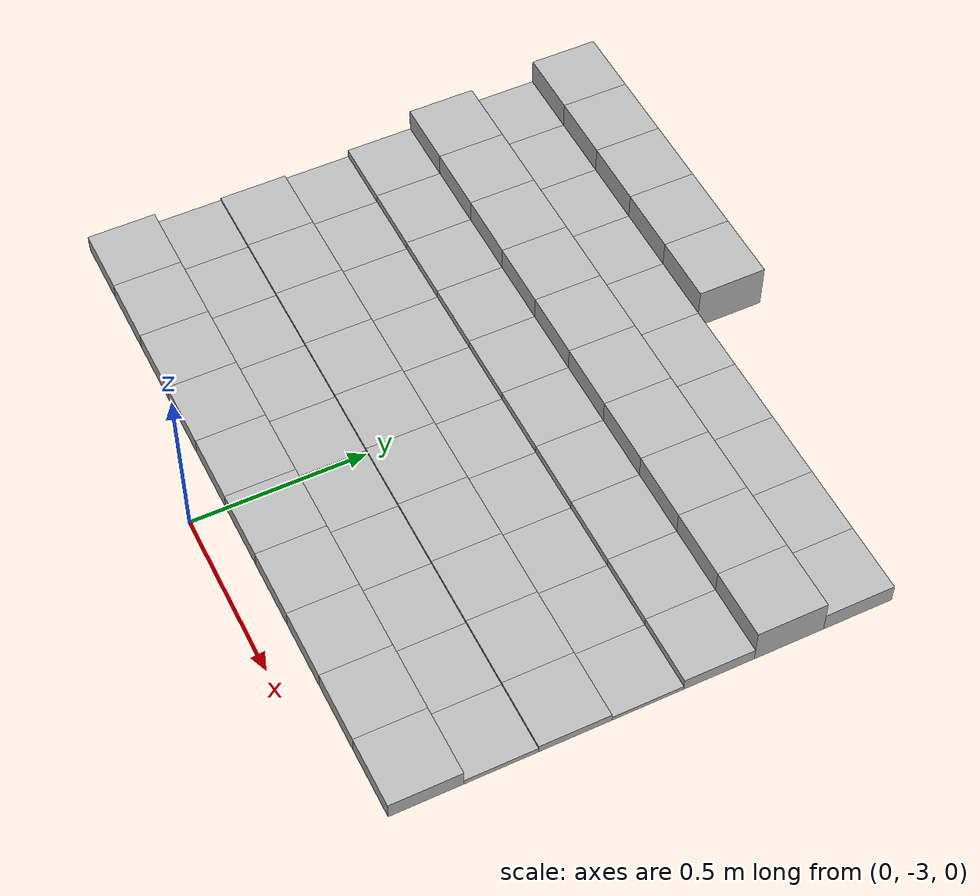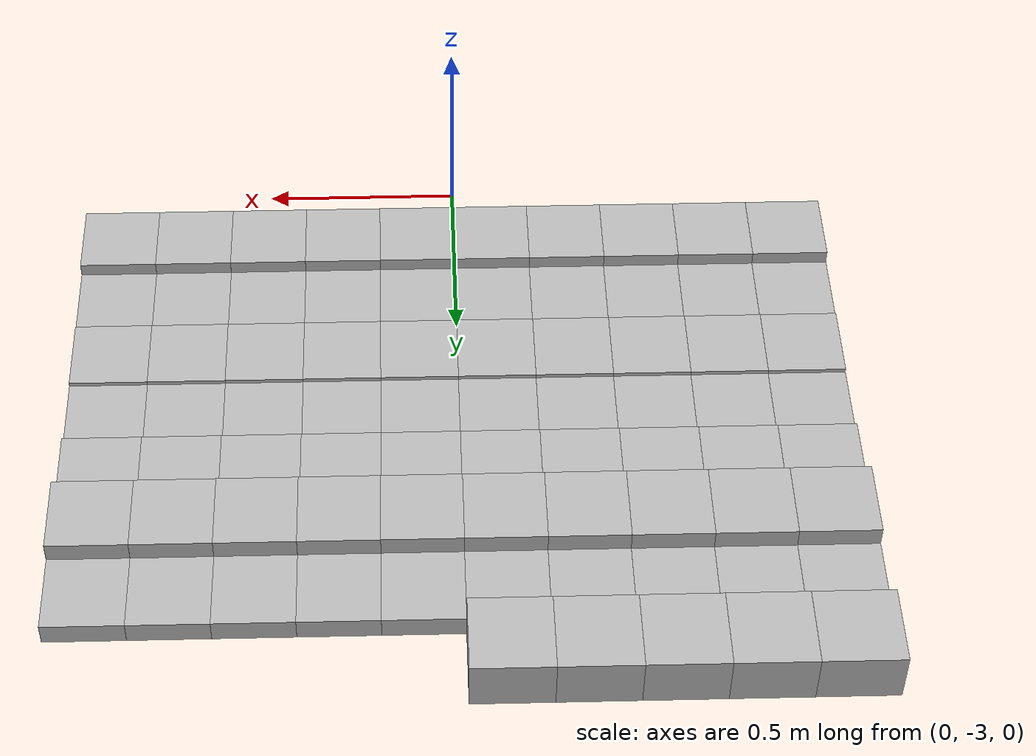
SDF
<sdf version="1.6">
 <model name="Terrain">
  <static>true</static>
  <link name="box_7_0">
   <pose>-0.9 -1.4 0.0691178265774 0 0 0</pose>
   <inertial>
    <mass>1.0</mass>
    <inertia><ixx>0.0</ixx><ixy>0.0</ixy><ixz>0.0</ixz><iyy>0.0</iyy><iyz>0.0</iyz><izz>0.0</izz></inertia>
   </inertial>
   <collision name="collision"><geometry><box><size>0.2 0.2 0.138235653155</size></box></geometry></collision>
   <visual name="visual"><geometry><box><size>0.2 0.2 0.138235653155</size></box></geometry></visual>
  </link>
  <link name="box_7_1">
   <pose>-0.7 -1.4 0.0691178265774 0 0 0</pose>
   <inertial>
    <mass>1.0</mass>
    <inertia><ixx>0.0</ixx><ixy>0.0</ixy><ixz>0.0</ixz><iyy>0.0</iyy><iyz>0.0</iyz><izz>0.0</izz></inertia>
   </inertial>
   <collision name="collision"><geometry><box><size>0.2 0.2 0.138235653155</size></box></geometry></collision>
   <visual name="visual"><geometry><box><size>0.2 0.2 0.138235653155</size></box></geometry></visual>
  </link>
  <link name="box_7_2">
   <pose>-0.5 -1.4 0.0691178265774 0 0 0</pose>
   <inertial>
    <mass>1.0</mass>
    <inertia><ixx>0.0</ixx><ixy>0.0</ixy><ixz>0.0</ixz><iyy>0.0</iyy><iyz>0.0</iyz><izz>0.0</izz></inertia>
   </inertial>
   <collision name="collision"><geometry><box><size>0.2 0.2 0.138235653155</size></box></geometry></collision>
   <visual name="visual"><geometry><box><size>0.2 0.2 0.138235653155</size></box></geometry></visual>
  </link>
  <link name="box_7_3">
   <pose>-0.3 -1.4 0.0691178265774 0 0 0</pose>
   <inertial>
    <mass>1.0</mass>
    <inertia><ixx>0.0</ixx><ixy>0.0</ixy><ixz>0.0</ixz><iyy>0.0</iyy><iyz>0.0</iyz><izz>0.0</izz></inertia>
   </inertial>
   <collision name="collision"><geometry><box><size>0.2 0.2 0.138235653155</size></box></geometry></collision>
   <visual name="visual"><geometry><box><size>0.2 0.2 0.138235653155</size></box></geometry></visual>
  </link>
  <link name="box_7_4">
   <pose>-0.1 -1.4 0.0691178265774 0 0 0</pose>
   <inertial>
    <mass>1.0</mass>
    <inertia><ixx>0.0</ixx><ixy>0.0</ixy><ixz>0.0</ixz><iyy>0.0</iyy><iyz>0.0</iyz><izz>0.0</izz></inertia>
   </inertial>
   <collision name="collision"><geometry><box><size>0.2 0.2 0.138235653155</size></box></geometry></collision>
   <visual name="visual"><geometry><box><size>0.2 0.2 0.138235653155</size></box></geometry></visual>
  </link>
  <link name="box_8_0">
   <pose>-0.9 -1.6 0.0291482180971 0 0 0</pose>
   <inertial>
    <mass>1.0</mass>
    <inertia><ixx>0.0</ixx><ixy>0.0</ixy><ixz>0.0</ixz><iyy>0.0</iyy><iyz>0.0</iyz><izz>0.0</izz></inertia>
   </inertial>
   <collision name="collision"><geometry><box><size>0.2 0.2 0.0582964361942</size></box></geometry></collision>
   <visual name="visual"><geometry><box><size>0.2 0.2 0.0582964361942</size></box></geometry></visual>
  </link>
  <link name="box_8_1">
   <pose>-0.7 -1.6 0.0291482180971 0 0 0</pose>
   <inertial>
    <mass>1.0</mass>
    <inertia><ixx>0.0</ixx><ixy>0.0</ixy><ixz>0.0</ixz><iyy>0.0</iyy><iyz>0.0</iyz><izz>0.0</izz></inertia>
   </inertial>
   <collision name="collision"><geometry><box><size>0.2 0.2 0.0582964361942</size></box></geometry></collision>
   <visual name="visual"><geometry><box><size>0.2 0.2 0.0582964361942</size></box></geometry></visual>
  </link>
  <link name="box_8_2">
   <pose>-0.5 -1.6 0.0291482180971 0 0 0</pose>
   <inertial>
    <mass>1.0</mass>
    <inertia><ixx>0.0</ixx><ixy>0.0</ixy><ixz>0.0</ixz><iyy>0.0</iyy><iyz>0.0</iyz><izz>0.0</izz></inertia>
   </inertial>
   <collision name="collision"><geometry><box><size>0.2 0.2 0.0582964361942</size></box></geometry></collision>
   <visual name="visual"><geometry><box><size>0.2 0.2 0.0582964361942</size></box></geometry></visual>
  </link>
  <link name="box_8_3">
   <pose>-0.3 -1.6 0.0291482180971 0 0 0</pose>
   <inertial>
    <mass>1.0</mass>
    <inertia><ixx>0.0</ixx><ixy>0.0</ixy><ixz>0.0</ixz><iyy>0.0</iyy><iyz>0.0</iyz><izz>0.0</izz></inertia>
   </inertial>
   <collision name="collision"><geometry><box><size>0.2 0.2 0.0582964361942</size></box></geometry></collision>
   <visual name="visual"><geometry><box><size>0.2 0.2 0.0582964361942</size></box></geometry></visual>
  </link>
  <link name="box_8_4">
   <pose>-0.1 -1.6 0.0291482180971 0 0 0</pose>
   <inertial>
    <mass>1.0</mass>
    <inertia><ixx>0.0</ixx><ixy>0.0</ixy><ixz>0.0</ixz><iyy>0.0</iyy><iyz>0.0</iyz><izz>0.0</izz></inertia>
   </inertial>
   <collision name="collision"><geometry><box><size>0.2 0.2 0.0582964361942</size></box></geometry></collision>
   <visual name="visual"><geometry><box><size>0.2 0.2 0.0582964361942</size></box></geometry></visual>
  </link>
  <link name="box_8_5">
   <pose>0.1 -1.6 0.0291482180971 0 0 0</pose>
   <inertial>
    <mass>1.0</mass>
    <inertia><ixx>0.0</ixx><ixy>0.0</ixy><ixz>0.0</ixz><iyy>0.0</iyy><iyz>0.0</iyz><izz>0.0</izz></inertia>
   </inertial>
   <collision name="collision"><geometry><box><size>0.2 0.2 0.0582964361942</size></box></geometry></collision>
   <visual name="visual"><geometry><box><size>0.2 0.2 0.0582964361942</size></box></geometry></visual>
  </link>
  <link name="box_8_6">
   <pose>0.3 -1.6 0.0291482180971 0 0 0</pose>
   <inertial>
    <mass>1.0</mass>
    <inertia><ixx>0.0</ixx><ixy>0.0</ixy><ixz>0.0</ixz><iyy>0.0</iyy><iyz>0.0</iyz><izz>0.0</izz></inertia>
   </inertial>
   <collision name="collision"><geometry><box><size>0.2 0.2 0.0582964361942</size></box></geometry></collision>
   <visual name="visual"><geometry><box><size>0.2 0.2 0.0582964361942</size></box></geometry></visual>
  </link>
  <link name="box_8_7">
   <pose>0.5 -1.6 0.0291482180971 0 0 0</pose>
   <inertial>
    <mass>1.0</mass>
    <inertia><ixx>0.0</ixx><ixy>0.0</ixy><ixz>0.0</ixz><iyy>0.0</iyy><iyz>0.0</iyz><izz>0.0</izz></inertia>
   </inertial>
   <collision name="collision"><geometry><box><size>0.2 0.2 0.0582964361942</size></box></geometry></collision>
   <visual name="visual"><geometry><box><size>0.2 0.2 0.0582964361942</size></box></geometry></visual>
  </link>
  <link name="box_8_8">
   <pose>0.7 -1.6 0.0291482180971 0 0 0</pose>
   <inertial>
    <mass>1.0</mass>
    <inertia><ixx>0.0</ixx><ixy>0.0</ixy><ixz>0.0</ixz><iyy>0.0</iyy><iyz>0.0</iyz><izz>0.0</izz></inertia>
   </inertial>
   <collision name="collision"><geometry><box><size>0.2 0.2 0.0582964361942</size></box></geometry></collision>
   <visual name="visual"><geometry><box><size>0.2 0.2 0.0582964361942</size></box></geometry></visual>
  </link>
  <link name="box_8_9">
   <pose>0.9 -1.6 0.0291482180971 0 0 0</pose>
   <inertial>
    <mass>1.0</mass>
    <inertia><ixx>0.0</ixx><ixy>0.0</ixy><ixz>0.0</ixz><iyy>0.0</iyy><iyz>0.0</iyz><izz>0.0</izz></inertia>
   </inertial>
   <collision name="collision"><geometry><box><size>0.2 0.2 0.0582964361942</size></box></geometry></collision>
   <visual name="visual"><geometry><box><size>0.2 0.2 0.0582964361942</size></box></geometry></visual>
  </link>
  <link name="box_9_0">
   <pose>-0.9 -1.8 0.0546674233878 0 0 0</pose>
   <inertial>
    <mass>1.0</mass>
    <inertia><ixx>0.0</ixx><ixy>0.0</ixy><ixz>0.0</ixz><iyy>0.0</iyy><iyz>0.0</iyz><izz>0.0</izz></inertia>
   </inertial>
   <collision name="collision"><geometry><box><size>0.2 0.2 0.109334846776</size></box></geometry></collision>
   <visual name="visual"><geometry><box><size>0.2 0.2 0.109334846776</size></box></geometry></visual>
  </link>
  <link name="box_9_1">
   <pose>-0.7 -1.8 0.0546674233878 0 0 0</pose>
   <inertial>
    <mass>1.0</mass>
    <inertia><ixx>0.0</ixx><ixy>0.0</ixy><ixz>0.0</ixz><iyy>0.0</iyy><iyz>0.0</iyz><izz>0.0</izz></inertia>
   </inertial>
   <collision name="collision"><geometry><box><size>0.2 0.2 0.109334846776</size></box></geometry></collision>
   <visual name="visual"><geometry><box><size>0.2 0.2 0.109334846776</size></box></geometry></visual>
  </link>
  <link name="box_9_2">
   <pose>-0.5 -1.8 0.0546674233878 0 0 0</pose>
   <inertial>
    <mass>1.0</mass>
    <inertia><ixx>0.0</ixx><ixy>0.0</ixy><ixz>0.0</ixz><iyy>0.0</iyy><iyz>0.0</iyz><izz>0.0</izz></inertia>
   </inertial>
   <collision name="collision"><geometry><box><size>0.2 0.2 0.109334846776</size></box></geometry></collision>
   <visual name="visual"><geometry><box><size>0.2 0.2 0.109334846776</size></box></geometry></visual>
  </link>
  <link name="box_9_3">
   <pose>-0.3 -1.8 0.0546674233878 0 0 0</pose>
   <inertial>
    <mass>1.0</mass>
    <inertia><ixx>0.0</ixx><ixy>0.0</ixy><ixz>0.0</ixz><iyy>0.0</iyy><iyz>0.0</iyz><izz>0.0</izz></inertia>
   </inertial>
   <collision name="collision"><geometry><box><size>0.2 0.2 0.109334846776</size></box></geometry></collision>
   <visual name="visual"><geometry><box><size>0.2 0.2 0.109334846776</size></box></geometry></visual>
  </link>
  <link name="box_9_4">
   <pose>-0.1 -1.8 0.0546674233878 0 0 0</pose>
   <inertial>
    <mass>1.0</mass>
    <inertia><ixx>0.0</ixx><ixy>0.0</ixy><ixz>0.0</ixz><iyy>0.0</iyy><iyz>0.0</iyz><izz>0.0</izz></inertia>
   </inertial>
   <collision name="collision"><geometry><box><size>0.2 0.2 0.109334846776</size></box></geometry></collision>
   <visual name="visual"><geometry><box><size>0.2 0.2 0.109334846776</size></box></geometry></visual>
  </link>
  <link name="box_9_5">
   <pose>0.1 -1.8 0.0546674233878 0 0 0</pose>
   <inertial>
    <mass>1.0</mass>
    <inertia><ixx>0.0</ixx><ixy>0.0</ixy><ixz>0.0</ixz><iyy>0.0</iyy><iyz>0.0</iyz><izz>0.0</izz></inertia>
   </inertial>
   <collision name="collision"><geometry><box><size>0.2 0.2 0.109334846776</size></box></geometry></collision>
   <visual name="visual"><geometry><box><size>0.2 0.2 0.109334846776</size></box></geometry></visual>
  </link>
  <link name="box_9_6">
   <pose>0.3 -1.8 0.0546674233878 0 0 0</pose>
   <inertial>
    <mass>1.0</mass>
    <inertia><ixx>0.0</ixx><ixy>0.0</ixy><ixz>0.0</ixz><iyy>0.0</iyy><iyz>0.0</iyz><izz>0.0</izz></inertia>
   </inertial>
   <collision name="collision"><geometry><box><size>0.2 0.2 0.109334846776</size></box></geometry></collision>
   <visual name="visual"><geometry><box><size>0.2 0.2 0.109334846776</size></box></geometry></visual>
  </link>
  <link name="box_9_7">
   <pose>0.5 -1.8 0.0546674233878 0 0 0</pose>
   <inertial>
    <mass>1.0</mass>
    <inertia><ixx>0.0</ixx><ixy>0.0</ixy><ixz>0.0</ixz><iyy>0.0</iyy><iyz>0.0</iyz><izz>0.0</izz></inertia>
   </inertial>
   <collision name="collision"><geometry><box><size>0.2 0.2 0.109334846776</size></box></geometry></collision>
   <visual name="visual"><geometry><box><size>0.2 0.2 0.109334846776</size></box></geometry></visual>
  </link>
  <link name="box_9_8">
   <pose>0.7 -1.8 0.0546674233878 0 0 0</pose>
   <inertial>
    <mass>1.0</mass>
    <inertia><ixx>0.0</ixx><ixy>0.0</ixy><ixz>0.0</ixz><iyy>0.0</iyy><iyz>0.0</iyz><izz>0.0</izz></inertia>
   </inertial>
   <collision name="collision"><geometry><box><size>0.2 0.2 0.109334846776</size></box></geometry></collision>
   <visual name="visual"><geometry><box><size>0.2 0.2 0.109334846776</size></box></geometry></visual>
  </link>
  <link name="box_9_9">
   <pose>0.9 -1.8 0.0546674233878 0 0 0</pose>
   <inertial>
    <mass>1.0</mass>
    <inertia><ixx>0.0</ixx><ixy>0.0</ixy><ixz>0.0</ixz><iyy>0.0</iyy><iyz>0.0</iyz><izz>0.0</izz></inertia>
   </inertial>
   <collision name="collision"><geometry><box><size>0.2 0.2 0.109334846776</size></box></geometry></collision>
   <visual name="visual"><geometry><box><size>0.2 0.2 0.109334846776</size></box></geometry></visual>
  </link>
  <link name="box_10_0">
   <pose>-0.9 -2.0 0.0193838969897 0 0 0</pose>
   <inertial>
    <mass>1.0</mass>
    <inertia><ixx>0.0</ixx><ixy>0.0</ixy><ixz>0.0</ixz><iyy>0.0</iyy><iyz>0.0</iyz><izz>0.0</izz></inertia>
   </inertial>
   <collision name="collision"><geometry><box><size>0.2 0.2 0.0387677939794</size></box></geometry></collision>
   <visual name="visual"><geometry><box><size>0.2 0.2 0.0387677939794</size></box></geometry></visual>
  </link>
  <link name="box_10_1">
   <pose>-0.7 -2.0 0.0193838969897 0 0 0</pose>
   <inertial>
    <mass>1.0</mass>
    <inertia><ixx>0.0</ixx><ixy>0.0</ixy><ixz>0.0</ixz><iyy>0.0</iyy><iyz>0.0</iyz><izz>0.0</izz></inertia>
   </inertial>
   <collision name="collision"><geometry><box><size>0.2 0.2 0.0387677939794</size></box></geometry></collision>
   <visual name="visual"><geometry><box><size>0.2 0.2 0.0387677939794</size></box></geometry></visual>
  </link>
  <link name="box_10_2">
   <pose>-0.5 -2.0 0.0193838969897 0 0 0</pose>
   <inertial>
    <mass>1.0</mass>
    <inertia><ixx>0.0</ixx><ixy>0.0</ixy><ixz>0.0</ixz><iyy>0.0</iyy><iyz>0.0</iyz><izz>0.0</izz></inertia>
   </inertial>
   <collision name="collision"><geometry><box><size>0.2 0.2 0.0387677939794</size></box></geometry></collision>
   <visual name="visual"><geometry><box><size>0.2 0.2 0.0387677939794</size></box></geometry></visual>
  </link>
  <link name="box_10_3">
   <pose>-0.3 -2.0 0.0193838969897 0 0 0</pose>
   <inertial>
    <mass>1.0</mass>
    <inertia><ixx>0.0</ixx><ixy>0.0</ixy><ixz>0.0</ixz><iyy>0.0</iyy><iyz>0.0</iyz><izz>0.0</izz></inertia>
   </inertial>
   <collision name="collision"><geometry><box><size>0.2 0.2 0.0387677939794</size></box></geometry></collision>
   <visual name="visual"><geometry><box><size>0.2 0.2 0.0387677939794</size></box></geometry></visual>
  </link>
  <link name="box_10_4">
   <pose>-0.1 -2.0 0.0193838969897 0 0 0</pose>
   <inertial>
    <mass>1.0</mass>
    <inertia><ixx>0.0</ixx><ixy>0.0</ixy><ixz>0.0</ixz><iyy>0.0</iyy><iyz>0.0</iyz><izz>0.0</izz></inertia>
   </inertial>
   <collision name="collision"><geometry><box><size>0.2 0.2 0.0387677939794</size></box></geometry></collision>
   <visual name="visual"><geometry><box><size>0.2 0.2 0.0387677939794</size></box></geometry></visual>
  </link>
  <link name="box_10_5">
   <pose>0.1 -2.0 0.0193838969897 0 0 0</pose>
   <inertial>
    <mass>1.0</mass>
    <inertia><ixx>0.0</ixx><ixy>0.0</ixy><ixz>0.0</ixz><iyy>0.0</iyy><iyz>0.0</iyz><izz>0.0</izz></inertia>
   </inertial>
   <collision name="collision"><geometry><box><size>0.2 0.2 0.0387677939794</size></box></geometry></collision>
   <visual name="visual"><geometry><box><size>0.2 0.2 0.0387677939794</size></box></geometry></visual>
  </link>
  <link name="box_10_6">
   <pose>0.3 -2.0 0.0193838969897 0 0 0</pose>
   <inertial>
    <mass>1.0</mass>
    <inertia><ixx>0.0</ixx><ixy>0.0</ixy><ixz>0.0</ixz><iyy>0.0</iyy><iyz>0.0</iyz><izz>0.0</izz></inertia>
   </inertial>
   <collision name="collision"><geometry><box><size>0.2 0.2 0.0387677939794</size></box></geometry></collision>
   <visual name="visual"><geometry><box><size>0.2 0.2 0.0387677939794</size></box></geometry></visual>
  </link>
  <link name="box_10_7">
   <pose>0.5 -2.0 0.0193838969897 0 0 0</pose>
   <inertial>
    <mass>1.0</mass>
    <inertia><ixx>0.0</ixx><ixy>0.0</ixy><ixz>0.0</ixz><iyy>0.0</iyy><iyz>0.0</iyz><izz>0.0</izz></inertia>
   </inertial>
   <collision name="collision"><geometry><box><size>0.2 0.2 0.0387677939794</size></box></geometry></collision>
   <visual name="visual"><geometry><box><size>0.2 0.2 0.0387677939794</size></box></geometry></visual>
  </link>
  <link name="box_10_8">
   <pose>0.7 -2.0 0.0193838969897 0 0 0</pose>
   <inertial>
    <mass>1.0</mass>
    <inertia><ixx>0.0</ixx><ixy>0.0</ixy><ixz>0.0</ixz><iyy>0.0</iyy><iyz>0.0</iyz><izz>0.0</izz></inertia>
   </inertial>
   <collision name="collision"><geometry><box><size>0.2 0.2 0.0387677939794</size></box></geometry></collision>
   <visual name="visual"><geometry><box><size>0.2 0.2 0.0387677939794</size></box></geometry></visual>
  </link>
  <link name="box_10_9">
   <pose>0.9 -2.0 0.0193838969897 0 0 0</pose>
   <inertial>
    <mass>1.0</mass>
    <inertia><ixx>0.0</ixx><ixy>0.0</ixy><ixz>0.0</ixz><iyy>0.0</iyy><iyz>0.0</iyz><izz>0.0</izz></inertia>
   </inertial>
   <collision name="collision"><geometry><box><size>0.2 0.2 0.0387677939794</size></box></geometry></collision>
   <visual name="visual"><geometry><box><size>0.2 0.2 0.0387677939794</size></box></geometry></visual>
  </link>
  <link name="box_11_0">
   <pose>-0.9 -2.2 0.00664214490887 0 0 0</pose>
   <inertial>
    <mass>1.0</mass>
    <inertia><ixx>0.0</ixx><ixy>0.0</ixy><ixz>0.0</ixz><iyy>0.0</iyy><iyz>0.0</iyz><izz>0.0</izz></inertia>
   </inertial>
   <collision name="collision"><geometry><box><size>0.2 0.2 0.0132842898177</size></box></geometry></collision>
   <visual name="visual"><geometry><box><size>0.2 0.2 0.0132842898177</size></box></geometry></visual>
  </link>
  <link name="box_11_1">
   <pose>-0.7 -2.2 0.00664214490887 0 0 0</pose>
   <inertial>
    <mass>1.0</mass>
    <inertia><ixx>0.0</ixx><ixy>0.0</ixy><ixz>0.0</ixz><iyy>0.0</iyy><iyz>0.0</iyz><izz>0.0</izz></inertia>
   </inertial>
   <collision name="collision"><geometry><box><size>0.2 0.2 0.0132842898177</size></box></geometry></collision>
   <visual name="visual"><geometry><box><size>0.2 0.2 0.0132842898177</size></box></geometry></visual>
  </link>
  <link name="box_11_2">
   <pose>-0.5 -2.2 0.00664214490887 0 0 0</pose>
   <inertial>
    <mass>1.0</mass>
    <inertia><ixx>0.0</ixx><ixy>0.0</ixy><ixz>0.0</ixz><iyy>0.0</iyy><iyz>0.0</iyz><izz>0.0</izz></inertia>
   </inertial>
   <collision name="collision"><geometry><box><size>0.2 0.2 0.0132842898177</size></box></geometry></collision>
   <visual name="visual"><geometry><box><size>0.2 0.2 0.0132842898177</size></box></geometry></visual>
  </link>
  <link name="box_11_3">
   <pose>-0.3 -2.2 0.00664214490887 0 0 0</pose>
   <inertial>
    <mass>1.0</mass>
    <inertia><ixx>0.0</ixx><ixy>0.0</ixy><ixz>0.0</ixz><iyy>0.0</iyy><iyz>0.0</iyz><izz>0.0</izz></inertia>
   </inertial>
   <collision name="collision"><geometry><box><size>0.2 0.2 0.0132842898177</size></box></geometry></collision>
   <visual name="visual"><geometry><box><size>0.2 0.2 0.0132842898177</size></box></geometry></visual>
  </link>
  <link name="box_11_4">
   <pose>-0.1 -2.2 0.00664214490887 0 0 0</pose>
   <inertial>
    <mass>1.0</mass>
    <inertia><ixx>0.0</ixx><ixy>0.0</ixy><ixz>0.0</ixz><iyy>0.0</iyy><iyz>0.0</iyz><izz>0.0</izz></inertia>
   </inertial>
   <collision name="collision"><geometry><box><size>0.2 0.2 0.0132842898177</size></box></geometry></collision>
   <visual name="visual"><geometry><box><size>0.2 0.2 0.0132842898177</size></box></geometry></visual>
  </link>
  <link name="box_11_5">
   <pose>0.1 -2.2 0.00664214490887 0 0 0</pose>
   <inertial>
    <mass>1.0</mass>
    <inertia><ixx>0.0</ixx><ixy>0.0</ixy><ixz>0.0</ixz><iyy>0.0</iyy><iyz>0.0</iyz><izz>0.0</izz></inertia>
   </inertial>
   <collision name="collision"><geometry><box><size>0.2 0.2 0.0132842898177</size></box></geometry></collision>
   <visual name="visual"><geometry><box><size>0.2 0.2 0.0132842898177</size></box></geometry></visual>
  </link>
  <link name="box_11_6">
   <pose>0.3 -2.2 0.00664214490887 0 0 0</pose>
   <inertial>
    <mass>1.0</mass>
    <inertia><ixx>0.0</ixx><ixy>0.0</ixy><ixz>0.0</ixz><iyy>0.0</iyy><iyz>0.0</iyz><izz>0.0</izz></inertia>
   </inertial>
   <collision name="collision"><geometry><box><size>0.2 0.2 0.0132842898177</size></box></geometry></collision>
   <visual name="visual"><geometry><box><size>0.2 0.2 0.0132842898177</size></box></geometry></visual>
  </link>
  <link name="box_11_7">
   <pose>0.5 -2.2 0.00664214490887 0 0 0</pose>
   <inertial>
    <mass>1.0</mass>
    <inertia><ixx>0.0</ixx><ixy>0.0</ixy><ixz>0.0</ixz><iyy>0.0</iyy><iyz>0.0</iyz><izz>0.0</izz></inertia>
   </inertial>
   <collision name="collision"><geometry><box><size>0.2 0.2 0.0132842898177</size></box></geometry></collision>
   <visual name="visual"><geometry><box><size>0.2 0.2 0.0132842898177</size></box></geometry></visual>
  </link>
  <link name="box_11_8">
   <pose>0.7 -2.2 0.00664214490887 0 0 0</pose>
   <inertial>
    <mass>1.0</mass>
    <inertia><ixx>0.0</ixx><ixy>0.0</ixy><ixz>0.0</ixz><iyy>0.0</iyy><iyz>0.0</iyz><izz>0.0</izz></inertia>
   </inertial>
   <collision name="collision"><geometry><box><size>0.2 0.2 0.0132842898177</size></box></geometry></collision>
   <visual name="visual"><geometry><box><size>0.2 0.2 0.0132842898177</size></box></geometry></visual>
  </link>
  <link name="box_11_9">
   <pose>0.9 -2.2 0.00664214490887 0 0 0</pose>
   <inertial>
    <mass>1.0</mass>
    <inertia><ixx>0.0</ixx><ixy>0.0</ixy><ixz>0.0</ixz><iyy>0.0</iyy><iyz>0.0</iyz><izz>0.0</izz></inertia>
   </inertial>
   <collision name="collision"><geometry><box><size>0.2 0.2 0.0132842898177</size></box></geometry></collision>
   <visual name="visual"><geometry><box><size>0.2 0.2 0.0132842898177</size></box></geometry></visual>
  </link>
  <link name="box_12_0">
   <pose>-0.9 -2.4 0.0121531810119 0 0 0</pose>
   <inertial>
    <mass>1.0</mass>
    <inertia><ixx>0.0</ixx><ixy>0.0</ixy><ixz>0.0</ixz><iyy>0.0</iyy><iyz>0.0</iyz><izz>0.0</izz></inertia>
   </inertial>
   <collision name="collision"><geometry><box><size>0.2 0.2 0.0243063620237</size></box></geometry></collision>
   <visual name="visual"><geometry><box><size>0.2 0.2 0.0243063620237</size></box></geometry></visual>
  </link>
  <link name="box_12_1">
   <pose>-0.7 -2.4 0.0121531810119 0 0 0</pose>
   <inertial>
    <mass>1.0</mass>
    <inertia><ixx>0.0</ixx><ixy>0.0</ixy><ixz>0.0</ixz><iyy>0.0</iyy><iyz>0.0</iyz><izz>0.0</izz></inertia>
   </inertial>
   <collision name="collision"><geometry><box><size>0.2 0.2 0.0243063620237</size></box></geometry></collision>
   <visual name="visual"><geometry><box><size>0.2 0.2 0.0243063620237</size></box></geometry></visual>
  </link>
  <link name="box_12_2">
   <pose>-0.5 -2.4 0.0121531810119 0 0 0</pose>
   <inertial>
    <mass>1.0</mass>
    <inertia><ixx>0.0</ixx><ixy>0.0</ixy><ixz>0.0</ixz><iyy>0.0</iyy><iyz>0.0</iyz><izz>0.0</izz></inertia>
   </inertial>
   <collision name="collision"><geometry><box><size>0.2 0.2 0.0243063620237</size></box></geometry></collision>
   <visual name="visual"><geometry><box><size>0.2 0.2 0.0243063620237</size></box></geometry></visual>
  </link>
  <link name="box_12_3">
   <pose>-0.3 -2.4 0.0121531810119 0 0 0</pose>
   <inertial>
    <mass>1.0</mass>
    <inertia><ixx>0.0</ixx><ixy>0.0</ixy><ixz>0.0</ixz><iyy>0.0</iyy><iyz>0.0</iyz><izz>0.0</izz></inertia>
   </inertial>
   <collision name="collision"><geometry><box><size>0.2 0.2 0.0243063620237</size></box></geometry></collision>
   <visual name="visual"><geometry><box><size>0.2 0.2 0.0243063620237</size></box></geometry></visual>
  </link>
  <link name="box_12_4">
   <pose>-0.1 -2.4 0.0121531810119 0 0 0</pose>
   <inertial>
    <mass>1.0</mass>
    <inertia><ixx>0.0</ixx><ixy>0.0</ixy><ixz>0.0</ixz><iyy>0.0</iyy><iyz>0.0</iyz><izz>0.0</izz></inertia>
   </inertial>
   <collision name="collision"><geometry><box><size>0.2 0.2 0.0243063620237</size></box></geometry></collision>
   <visual name="visual"><geometry><box><size>0.2 0.2 0.0243063620237</size></box></geometry></visual>
  </link>
  <link name="box_12_5">
   <pose>0.1 -2.4 0.0121531810119 0 0 0</pose>
   <inertial>
    <mass>1.0</mass>
    <inertia><ixx>0.0</ixx><ixy>0.0</ixy><ixz>0.0</ixz><iyy>0.0</iyy><iyz>0.0</iyz><izz>0.0</izz></inertia>
   </inertial>
   <collision name="collision"><geometry><box><size>0.2 0.2 0.0243063620237</size></box></geometry></collision>
   <visual name="visual"><geometry><box><size>0.2 0.2 0.0243063620237</size></box></geometry></visual>
  </link>
  <link name="box_12_6">
   <pose>0.3 -2.4 0.0121531810119 0 0 0</pose>
   <inertial>
    <mass>1.0</mass>
    <inertia><ixx>0.0</ixx><ixy>0.0</ixy><ixz>0.0</ixz><iyy>0.0</iyy><iyz>0.0</iyz><izz>0.0</izz></inertia>
   </inertial>
   <collision name="collision"><geometry><box><size>0.2 0.2 0.0243063620237</size></box></geometry></collision>
   <visual name="visual"><geometry><box><size>0.2 0.2 0.0243063620237</size></box></geometry></visual>
  </link>
  <link name="box_12_7">
   <pose>0.5 -2.4 0.0121531810119 0 0 0</pose>
   <inertial>
    <mass>1.0</mass>
    <inertia><ixx>0.0</ixx><ixy>0.0</ixy><ixz>0.0</ixz><iyy>0.0</iyy><iyz>0.0</iyz><izz>0.0</izz></inertia>
   </inertial>
   <collision name="collision"><geometry><box><size>0.2 0.2 0.0243063620237</size></box></geometry></collision>
   <visual name="visual"><geometry><box><size>0.2 0.2 0.0243063620237</size></box></geometry></visual>
  </link>
  <link name="box_12_8">
   <pose>0.7 -2.4 0.0121531810119 0 0 0</pose>
   <inertial>
    <mass>1.0</mass>
    <inertia><ixx>0.0</ixx><ixy>0.0</ixy><ixz>0.0</ixz><iyy>0.0</iyy><iyz>0.0</iyz><izz>0.0</izz></inertia>
   </inertial>
   <collision name="collision"><geometry><box><size>0.2 0.2 0.0243063620237</size></box></geometry></collision>
   <visual name="visual"><geometry><box><size>0.2 0.2 0.0243063620237</size></box></geometry></visual>
  </link>
  <link name="box_12_9">
   <pose>0.9 -2.4 0.0121531810119 0 0 0</pose>
   <inertial>
    <mass>1.0</mass>
    <inertia><ixx>0.0</ixx><ixy>0.0</ixy><ixz>0.0</ixz><iyy>0.0</iyy><iyz>0.0</iyz><izz>0.0</izz></inertia>
   </inertial>
   <collision name="collision"><geometry><box><size>0.2 0.2 0.0243063620237</size></box></geometry></collision>
   <visual name="visual"><geometry><box><size>0.2 0.2 0.0243063620237</size></box></geometry></visual>
  </link>
  <link name="box_13_0">
   <pose>-0.9 -2.6 0.00807317218673 0 0 0</pose>
   <inertial>
    <mass>1.0</mass>
    <inertia><ixx>0.0</ixx><ixy>0.0</ixy><ixz>0.0</ixz><iyy>0.0</iyy><iyz>0.0</iyz><izz>0.0</izz></inertia>
   </inertial>
   <collision name="collision"><geometry><box><size>0.2 0.2 0.0161463443735</size></box></geometry></collision>
   <visual name="visual"><geometry><box><size>0.2 0.2 0.0161463443735</size></box></geometry></visual>
  </link>
  <link name="box_13_1">
   <pose>-0.7 -2.6 0.00807317218673 0 0 0</pose>
   <inertial>
    <mass>1.0</mass>
    <inertia><ixx>0.0</ixx><ixy>0.0</ixy><ixz>0.0</ixz><iyy>0.0</iyy><iyz>0.0</iyz><izz>0.0</izz></inertia>
   </inertial>
   <collision name="collision"><geometry><box><size>0.2 0.2 0.0161463443735</size></box></geometry></collision>
   <visual name="visual"><geometry><box><size>0.2 0.2 0.0161463443735</size></box></geometry></visual>
  </link>
  <link name="box_13_2">
   <pose>-0.5 -2.6 0.00807317218673 0 0 0</pose>
   <inertial>
    <mass>1.0</mass>
    <inertia><ixx>0.0</ixx><ixy>0.0</ixy><ixz>0.0</ixz><iyy>0.0</iyy><iyz>0.0</iyz><izz>0.0</izz></inertia>
   </inertial>
   <collision name="collision"><geometry><box><size>0.2 0.2 0.0161463443735</size></box></geometry></collision>
   <visual name="visual"><geometry><box><size>0.2 0.2 0.0161463443735</size></box></geometry></visual>
  </link>
  <link name="box_13_3">
   <pose>-0.3 -2.6 0.00807317218673 0 0 0</pose>
   <inertial>
    <mass>1.0</mass>
    <inertia><ixx>0.0</ixx><ixy>0.0</ixy><ixz>0.0</ixz><iyy>0.0</iyy><iyz>0.0</iyz><izz>0.0</izz></inertia>
   </inertial>
   <collision name="collision"><geometry><box><size>0.2 0.2 0.0161463443735</size></box></geometry></collision>
   <visual name="visual"><geometry><box><size>0.2 0.2 0.0161463443735</size></box></geometry></visual>
  </link>
  <link name="box_13_4">
   <pose>-0.1 -2.6 0.00807317218673 0 0 0</pose>
   <inertial>
    <mass>1.0</mass>
    <inertia><ixx>0.0</ixx><ixy>0.0</ixy><ixz>0.0</ixz><iyy>0.0</iyy><iyz>0.0</iyz><izz>0.0</izz></inertia>
   </inertial>
   <collision name="collision"><geometry><box><size>0.2 0.2 0.0161463443735</size></box></geometry></collision>
   <visual name="visual"><geometry><box><size>0.2 0.2 0.0161463443735</size></box></geometry></visual>
  </link>
  <link name="box_13_5">
   <pose>0.1 -2.6 0.00807317218673 0 0 0</pose>
   <inertial>
    <mass>1.0</mass>
    <inertia><ixx>0.0</ixx><ixy>0.0</ixy><ixz>0.0</ixz><iyy>0.0</iyy><iyz>0.0</iyz><izz>0.0</izz></inertia>
   </inertial>
   <collision name="collision"><geometry><box><size>0.2 0.2 0.0161463443735</size></box></geometry></collision>
   <visual name="visual"><geometry><box><size>0.2 0.2 0.0161463443735</size></box></geometry></visual>
  </link>
  <link name="box_13_6">
   <pose>0.3 -2.6 0.00807317218673 0 0 0</pose>
   <inertial>
    <mass>1.0</mass>
    <inertia><ixx>0.0</ixx><ixy>0.0</ixy><ixz>0.0</ixz><iyy>0.0</iyy><iyz>0.0</iyz><izz>0.0</izz></inertia>
   </inertial>
   <collision name="collision"><geometry><box><size>0.2 0.2 0.0161463443735</size></box></geometry></collision>
   <visual name="visual"><geometry><box><size>0.2 0.2 0.0161463443735</size></box></geometry></visual>
  </link>
  <link name="box_13_7">
   <pose>0.5 -2.6 0.00807317218673 0 0 0</pose>
   <inertial>
    <mass>1.0</mass>
    <inertia><ixx>0.0</ixx><ixy>0.0</ixy><ixz>0.0</ixz><iyy>0.0</iyy><iyz>0.0</iyz><izz>0.0</izz></inertia>
   </inertial>
   <collision name="collision"><geometry><box><size>0.2 0.2 0.0161463443735</size></box></geometry></collision>
   <visual name="visual"><geometry><box><size>0.2 0.2 0.0161463443735</size></box></geometry></visual>
  </link>
  <link name="box_13_8">
   <pose>0.7 -2.6 0.00807317218673 0 0 0</pose>
   <inertial>
    <mass>1.0</mass>
    <inertia><ixx>0.0</ixx><ixy>0.0</ixy><ixz>0.0</ixz><iyy>0.0</iyy><iyz>0.0</iyz><izz>0.0</izz></inertia>
   </inertial>
   <collision name="collision"><geometry><box><size>0.2 0.2 0.0161463443735</size></box></geometry></collision>
   <visual name="visual"><geometry><box><size>0.2 0.2 0.0161463443735</size></box></geometry></visual>
  </link>
  <link name="box_13_9">
   <pose>0.9 -2.6 0.00807317218673 0 0 0</pose>
   <inertial>
    <mass>1.0</mass>
    <inertia><ixx>0.0</ixx><ixy>0.0</ixy><ixz>0.0</ixz><iyy>0.0</iyy><iyz>0.0</iyz><izz>0.0</izz></inertia>
   </inertial>
   <collision name="collision"><geometry><box><size>0.2 0.2 0.0161463443735</size></box></geometry></collision>
   <visual name="visual"><geometry><box><size>0.2 0.2 0.0161463443735</size></box></geometry></visual>
  </link>
  <link name="box_14_0">
   <pose>-0.9 -2.8 0.0259708910127 0 0 0</pose>
   <inertial>
    <mass>1.0</mass>
    <inertia><ixx>0.0</ixx><ixy>0.0</ixy><ixz>0.0</ixz><iyy>0.0</iyy><iyz>0.0</iyz><izz>0.0</izz></inertia>
   </inertial>
   <collision name="collision"><geometry><box><size>0.2 0.2 0.0519417820254</size></box></geometry></collision>
   <visual name="visual"><geometry><box><size>0.2 0.2 0.0519417820254</size></box></geometry></visual>
  </link>
  <link name="box_14_1">
   <pose>-0.7 -2.8 0.0259708910127 0 0 0</pose>
   <inertial>
    <mass>1.0</mass>
    <inertia><ixx>0.0</ixx><ixy>0.0</ixy><ixz>0.0</ixz><iyy>0.0</iyy><iyz>0.0</iyz><izz>0.0</izz></inertia>
   </inertial>
   <collision name="collision"><geometry><box><size>0.2 0.2 0.0519417820254</size></box></geometry></collision>
   <visual name="visual"><geometry><box><size>0.2 0.2 0.0519417820254</size></box></geometry></visual>
  </link>
  <link name="box_14_2">
   <pose>-0.5 -2.8 0.0259708910127 0 0 0</pose>
   <inertial>
    <mass>1.0</mass>
    <inertia><ixx>0.0</ixx><ixy>0.0</ixy><ixz>0.0</ixz><iyy>0.0</iyy><iyz>0.0</iyz><izz>0.0</izz></inertia>
   </inertial>
   <collision name="collision"><geometry><box><size>0.2 0.2 0.0519417820254</size></box></geometry></collision>
   <visual name="visual"><geometry><box><size>0.2 0.2 0.0519417820254</size></box></geometry></visual>
  </link>
  <link name="box_14_3">
   <pose>-0.3 -2.8 0.0259708910127 0 0 0</pose>
   <inertial>
    <mass>1.0</mass>
    <inertia><ixx>0.0</ixx><ixy>0.0</ixy><ixz>0.0</ixz><iyy>0.0</iyy><iyz>0.0</iyz><izz>0.0</izz></inertia>
   </inertial>
   <collision name="collision"><geometry><box><size>0.2 0.2 0.0519417820254</size></box></geometry></collision>
   <visual name="visual"><geometry><box><size>0.2 0.2 0.0519417820254</size></box></geometry></visual>
  </link>
  <link name="box_14_4">
   <pose>-0.1 -2.8 0.0259708910127 0 0 0</pose>
   <inertial>
    <mass>1.0</mass>
    <inertia><ixx>0.0</ixx><ixy>0.0</ixy><ixz>0.0</ixz><iyy>0.0</iyy><iyz>0.0</iyz><izz>0.0</izz></inertia>
   </inertial>
   <collision name="collision"><geometry><box><size>0.2 0.2 0.0519417820254</size></box></geometry></collision>
   <visual name="visual"><geometry><box><size>0.2 0.2 0.0519417820254</size></box></geometry></visual>
  </link>
  <link name="box_14_5">
   <pose>0.1 -2.8 0.0259708910127 0 0 0</pose>
   <inertial>
    <mass>1.0</mass>
    <inertia><ixx>0.0</ixx><ixy>0.0</ixy><ixz>0.0</ixz><iyy>0.0</iyy><iyz>0.0</iyz><izz>0.0</izz></inertia>
   </inertial>
   <collision name="collision"><geometry><box><size>0.2 0.2 0.0519417820254</size></box></geometry></collision>
   <visual name="visual"><geometry><box><size>0.2 0.2 0.0519417820254</size></box></geometry></visual>
  </link>
  <link name="box_14_6">
   <pose>0.3 -2.8 0.0259708910127 0 0 0</pose>
   <inertial>
    <mass>1.0</mass>
    <inertia><ixx>0.0</ixx><ixy>0.0</ixy><ixz>0.0</ixz><iyy>0.0</iyy><iyz>0.0</iyz><izz>0.0</izz></inertia>
   </inertial>
   <collision name="collision"><geometry><box><size>0.2 0.2 0.0519417820254</size></box></geometry></collision>
   <visual name="visual"><geometry><box><size>0.2 0.2 0.0519417820254</size></box></geometry></visual>
  </link>
  <link name="box_14_7">
   <pose>0.5 -2.8 0.0259708910127 0 0 0</pose>
   <inertial>
    <mass>1.0</mass>
    <inertia><ixx>0.0</ixx><ixy>0.0</ixy><ixz>0.0</ixz><iyy>0.0</iyy><iyz>0.0</iyz><izz>0.0</izz></inertia>
   </inertial>
   <collision name="collision"><geometry><box><size>0.2 0.2 0.0519417820254</size></box></geometry></collision>
   <visual name="visual"><geometry><box><size>0.2 0.2 0.0519417820254</size></box></geometry></visual>
  </link>
  <link name="box_14_8">
   <pose>0.7 -2.8 0.0259708910127 0 0 0</pose>
   <inertial>
    <mass>1.0</mass>
    <inertia><ixx>0.0</ixx><ixy>0.0</ixy><ixz>0.0</ixz><iyy>0.0</iyy><iyz>0.0</iyz><izz>0.0</izz></inertia>
   </inertial>
   <collision name="collision"><geometry><box><size>0.2 0.2 0.0519417820254</size></box></geometry></collision>
   <visual name="visual"><geometry><box><size>0.2 0.2 0.0519417820254</size></box></geometry></visual>
  </link>
  <link name="box_14_9">
   <pose>0.9 -2.8 0.0259708910127 0 0 0</pose>
   <inertial>
    <mass>1.0</mass>
    <inertia><ixx>0.0</ixx><ixy>0.0</ixy><ixz>0.0</ixz><iyy>0.0</iyy><iyz>0.0</iyz><izz>0.0</izz></inertia>
   </inertial>
   <collision name="collision"><geometry><box><size>0.2 0.2 0.0519417820254</size></box></geometry></collision>
   <visual name="visual"><geometry><box><size>0.2 0.2 0.0519417820254</size></box></geometry></visual>
  </link>
 </model>
</sdf>
